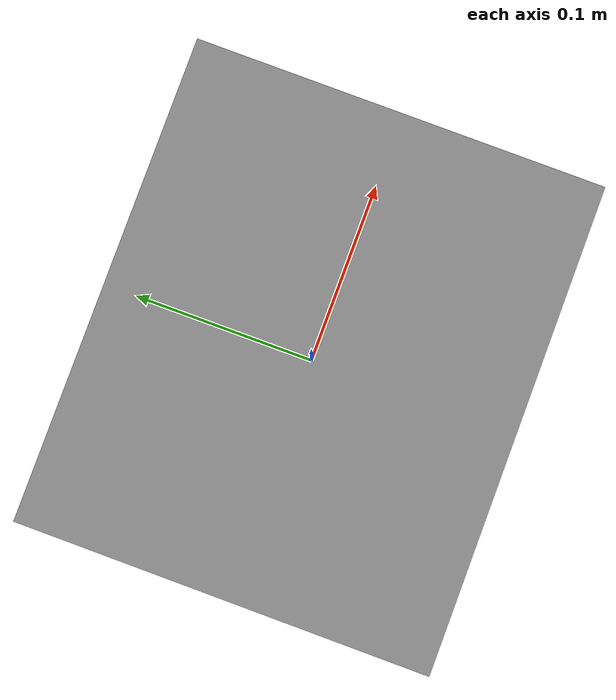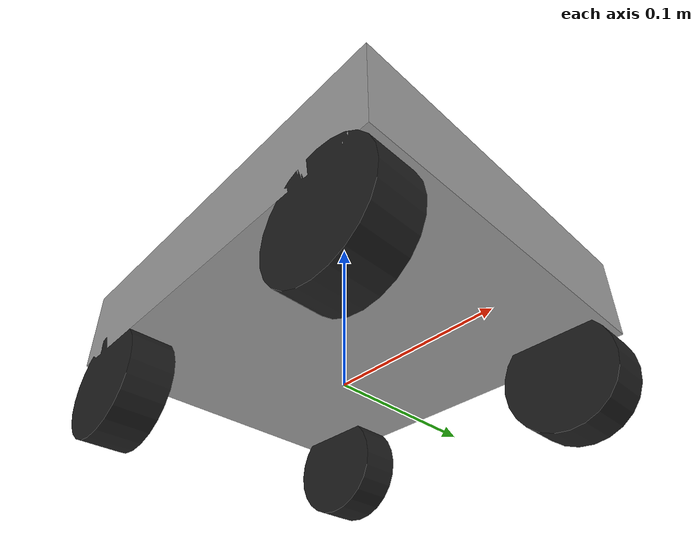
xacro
<?xml version="1.0"?>
<robot xmlns:xacro="http://www.ros.org/wiki/xacro">

  <!-- Validated hardware values — do not change without updating CLAUDE.md -->
  <xacro:property name="wheel_radius" value="0.03414"/>
  <xacro:property name="wheel_width"  value="0.026"/>
  <xacro:property name="wheel_sep"    value="0.177"/>

  <!-- Measured chassis dimensions -->
  <xacro:property name="chassis_l" value="0.24"/>
  <xacro:property name="chassis_w" value="0.203"/>
  <xacro:property name="chassis_h" value="0.051"/>

  <!-- Wheelbase (front-to-rear axle distance) — PLACEHOLDER, measure when chassis arrives -->
  <xacro:property name="wheelbase"      value="0.18"/>

  <!-- Measured: motor shaft sits 23mm below chassis plate bottom surface.
       Ground clearance = wheel_radius - bracket_offset = 34.14 - 23 = 11.14mm -->
  <xacro:property name="bracket_offset" value="0.023"/>

  <!-- Inertia helpers -->
  <xacro:macro name="box_inertia" params="m l w h">
    <inertial>
      <mass value="${m}"/>
      <inertia
        ixx="${m*(h*h+w*w)/12}" ixy="0" ixz="0"
        iyy="${m*(h*h+l*l)/12}" iyz="0"
        izz="${m*(l*l+w*w)/12}"/>
    </inertial>
  </xacro:macro>

  <xacro:macro name="cylinder_inertia" params="m r h">
    <inertial>
      <mass value="${m}"/>
      <inertia
        ixx="${m*(3*r*r+h*h)/12}" ixy="0" ixz="0"
        iyy="${m*(3*r*r+h*h)/12}" iyz="0"
        izz="${m*r*r/2}"/>
    </inertial>
  </xacro:macro>

  <!-- Wheel macro — joint origin rpy="-pi/2 0 0" aligns cylinder z-axis with parent y-axis -->
  <xacro:macro name="wheel" params="name x_offset y_offset">
    <link name="${name}">
      <visual>
        <geometry><cylinder radius="${wheel_radius}" length="${wheel_width}"/></geometry>
        <material name="black"/>
      </visual>
      <collision>
        <geometry><cylinder radius="${wheel_radius}" length="${wheel_width}"/></geometry>
      </collision>
      <xacro:cylinder_inertia m="0.15" r="${wheel_radius}" h="${wheel_width}"/>
    </link>
    <joint name="${name}_joint" type="continuous">
      <parent link="base_link"/>
      <child link="${name}"/>
      <origin xyz="${x_offset} ${y_offset} 0" rpy="${-pi/2} 0 0"/>
      <axis xyz="0 0 1"/>
    </joint>
  </xacro:macro>

  <!-- base_footprint: ground-plane projection of base_link — required by Nav2 and robot_localization.
       No geometry; KDL complains if the root link has inertia, so this link carries none. -->
  <link name="base_footprint"/>
  <joint name="base_footprint_joint" type="fixed">
    <parent link="base_footprint"/>
    <child link="base_link"/>
    <origin xyz="0 0 0" rpy="0 0 0"/>
  </joint>

  <!-- Base chassis — origin at wheel axle height, centered between all four wheels.
       Chassis bottom face is bracket_offset above the axle, so box center is offset in z. -->
  <link name="base_link">
    <visual>
      <origin xyz="0 0 ${bracket_offset + chassis_h/2}" rpy="0 0 0"/>
      <geometry><box size="${chassis_l} ${chassis_w} ${chassis_h}"/></geometry>
      <material name="grey"/>
    </visual>
    <collision>
      <origin xyz="0 0 ${bracket_offset + chassis_h/2}" rpy="0 0 0"/>
      <geometry><box size="${chassis_l} ${chassis_w} ${chassis_h}"/></geometry>
    </collision>
    <xacro:box_inertia m="2.5" l="${chassis_l}" w="${chassis_w}" h="${chassis_h}"/>
  </link>

  <!-- Four wheels: front/rear × left/right -->
  <xacro:wheel name="front_left_wheel"  x_offset=" ${wheelbase/2}" y_offset=" ${wheel_sep/2}"/>
  <xacro:wheel name="front_right_wheel" x_offset=" ${wheelbase/2}" y_offset="-${wheel_sep/2}"/>
  <xacro:wheel name="rear_left_wheel"   x_offset="-${wheelbase/2}" y_offset=" ${wheel_sep/2}"/>
  <xacro:wheel name="rear_right_wheel"  x_offset="-${wheelbase/2}" y_offset="-${wheel_sep/2}"/>

</robot>
